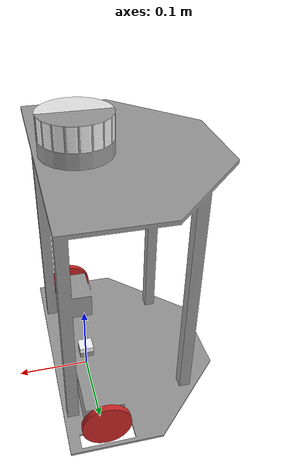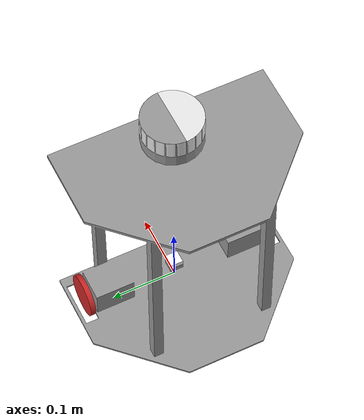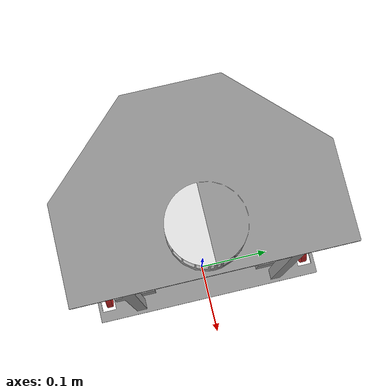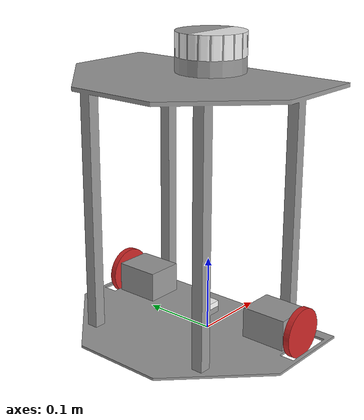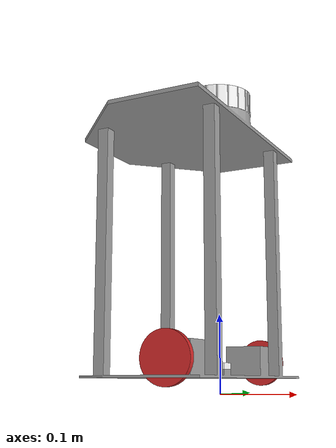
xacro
<?xml version="1.0" encoding="utf-8"?>
<robot name="valrob_description" xmlns:xacro="http://ros.org/wiki/xacro">
  <xacro:include filename="$(find valrob_description)/urdf/common_properties.xacro"/>
  <xacro:include filename="$(find valrob_description)/urdf/valrob_description.gazebo.xacro"/>

  <link name="base_footprint"/>

  <joint name="base_joint" type="fixed">
    <parent link="base_footprint"/>
    <child link="base_link"/>
    <origin xyz="0.0 0.0 0.010" rpy="0 0 0"/>
  </joint>

  <!-- base link -->
  <link name="base_link">
    <inertial>
      <origin
        xyz="-0.027491 1.0825E-15 0.20899"
        rpy="0 0 0" />
      <mass value="1.3465" />
      <inertia
        ixx="0.039404"
        ixy="-1.7092E-17"
        ixz="-0.00031636"
        iyy="0.034752"
        iyz="-1.0563E-19"
        izz="0.013857" />
    </inertial>
    <visual>
      <origin xyz="0 0 0" rpy="0 0 0"/>
      <geometry>
        <mesh filename="package://valrob_description/meshes/base_link.STL" />
      </geometry>
      <material name="grey" />

    </visual>
    <collision>
      <origin xyz="0 0 0" rpy="0 0 0" />
      <geometry>
        <mesh filename="package://valrob_description/meshes/base_link.STL" />
      </geometry>
    </collision>
  </link>

  <!-- right wheel -->
  <link name="right_wheel">
    <inertial>
      <origin
        xyz="-8.8818E-16 1.1935E-15 0.013932"
        rpy="0 0 0" />
      <mass value="0.025932" />
      <inertia
        ixx="6.7434E-06"
        ixy="-1.2105E-37"
        ixz="2.5269E-22"
        iyy="6.7434E-06"
        iyz="0"
        izz="1.3177E-05" />
    </inertial>
    <visual>
      <origin xyz="0 0 0" rpy="0 0 0" />
      <geometry>
        <mesh filename="package://valrob_description/meshes/right_wheel.STL" />
      </geometry>
      <material name="red"/>
    </visual>
    <collision>
      <origin xyz="0 0 0" rpy="0 0 0" />
      <geometry>
        <mesh filename="package://valrob_description/meshes/right_wheel.STL" />
      </geometry>
    </collision>
  </link>

  <!-- right wheel       joint -->
  <joint name="right_wheel_joint" type="continuous">
    <origin xyz="0 -0.132 0.032" rpy="-1.5708 0 3.1416" />
    <parent link="base_link" />
    <child link="right_wheel" />
    <axis xyz="0 0 1" />
  </joint>

  <!-- left wheel -->
  <link name="left_wheel">
    <inertial>
      <origin
        xyz="-4.85722573273506E-17 0 0.00626572239693311"
        rpy="0 0 0" />
      <mass value="0.025932276559057" />
      <inertia
        ixx="6.74338252769793E-06"
        ixy="-4.23516473627121E-22"
        ixz="-1.29745545514423E-20"
        iyy="6.74338252769793E-06"
        iyz="-2.24665558815487E-22"
        izz="1.31774082256374E-05" />
    </inertial>
    <visual>
      <origin xyz="0 0 0" rpy="0 0 0" />
      <geometry>
        <mesh filename="package://valrob_description/meshes/left_wheel.STL" />
      </geometry>
      <material name="red"/>

    </visual>
    <collision>
      <origin xyz="0 0 0" rpy="0 0 0" />
      <geometry>
        <mesh filename="package://valrob_description/meshes/left_wheel.STL" />
      </geometry>
    </collision>
  </link>

   <!-- left wheel       joint -->
  <joint name="left_wheel_joint" type="continuous">
    <origin xyz="0 0.13967 0.032" rpy="-1.5708 -1.2033 0" />
    <parent link="base_link" />
    <child link="left_wheel" />
    <axis xyz="0 0 1" />
  </joint>

  <!-- laser -->
  <link name="laser">
    <inertial>
      <origin
        xyz="0 0 0.015"
        rpy="0 0 0" />
      <mass value="0.19085175370558" />
      <inertia
        ixx="0.000110932581841368"
        ixy="-2.48950075531325E-37"
        ixz="0"
        iyy="0.0001932374006269"
        iyz="0"
        izz="0.000110932581841368" />
    </inertial>
    <visual>
      <origin xyz="0 0 0" rpy="1.57 0 0" />
      <geometry>
        <mesh filename="package://valrob_description/meshes/laser.STL" />
      </geometry>
      <material name="white"/>
    </visual>
    <collision>
      <origin xyz="0 0 0" rpy="1.57 0 0" />
      <geometry>
        <mesh filename="package://valrob_description/meshes/laser.STL" />
      </geometry>
    </collision>
  </link>

   <!-- laser            joint -->
  <joint name="laser_joint" type="fixed">
    <origin
      xyz="0 0 0.388"
      rpy="0 0 0" />
    <parent link="base_link" />
    <child link="laser" />
    <axis xyz="0 0 0" />
  </joint>

  <!-- imu -->
  <link name="imu_link">
    <inertial>
      <origin xyz="0 0 0" rpy="0 0 0" />
      <mass value="0" />
      <inertia
        ixx="0"
        ixy="0"
        ixz="0"
        iyy="0"
        iyz="0"
        izz="0" />
    </inertial>
    <visual>
      <origin xyz="0 0 0" rpy="0 0 0" />
      <geometry>
        <mesh filename="package://valrob_description/meshes/imu.STL" />
      </geometry>
      <material name="">
        <color rgba="1 1 1 1" />
      </material>
    </visual>
    <collision>
      <origin xyz="0 0 0" rpy="0 0 0" />
      <geometry>
        <mesh filename="package://valrob_description/meshes/imu.STL" />
      </geometry>
    </collision>
  </link>

  <!-- imu               joint -->
  <joint name="imu_joint" type="fixed">
    <origin xyz="0.01 -0.01 0.029" rpy="-1.5708 0 3.1416" />
    <parent link="base_link" />
    <child link="imu_link" />
    <axis  xyz="0 0 0" />
  </joint>
</robot>
